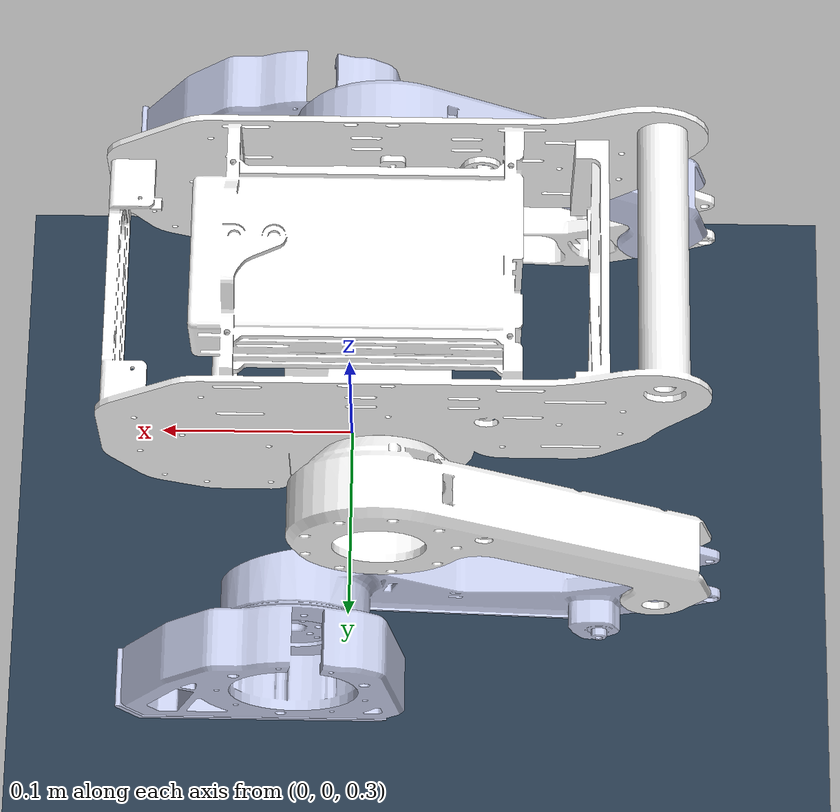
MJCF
<mujoco model="standuptest">
  <compiler angle="radian"/>
  <asset>
    <texture type="skybox" builtin="gradient" rgb1="0.3 0.5 0.7" rgb2="0 0 0" width="512" height="512" />
    <texture name="texplane" type="2d" builtin="checker" rgb1=".2 .3 .4" rgb2=".1 0.15 0.2" width="512" height="512" mark="cross" markrgb=".8 .8 .8" />
    <material name="matplane" reflectance="0.3" texture="texplane" texrepeat="1 1" texuniform="true" />
    <mesh name="base_link" file="base_link.STL"/>
    <mesh name="la_link" file="la_link.STL"/>
    <mesh name="ll_link" file="ll_link.STL"/>
    <mesh name="lf_link" file="lf_link.STL"/>
    <mesh name="ra_link" file="ra_link.STL"/>
    <mesh name="rl_link" file="rl_link.STL"/>
    <mesh name="rf_link" file="rf_link.STL"/>
    <texture builtin="gradient" height="15" rgb1="1 1 1" rgb2="0 0 0" type="skybox" width="100"/>
    <texture builtin="flat" height="80" mark="cross" markrgb="1 1 1" name="texgeom" random="0.1" rgb1="0.8 0.6 0.4" rgb2="0.8 0.6 0.4" type="cube" width="127"/>
    <texture builtin="checker" height="80" name="texplane2" rgb1="0.2 0.4 0.6" rgb2="0.8 0.8 0.8" type="2d" width="100"/>
    <material name="MatPlane" reflectance="1.5" shininess="1" specular="1" texrepeat="60 60" texture="texplane"/>
    <material name="geoms" texture="texgeom" texuniform="true"/>
    <hfield name="mytilted" file="heightmap.png" nrow="0" ncol="0" size="150 150 0.3 1.5" />

  </asset>
  <worldbody>
    <light directional="true" diffuse=".4 .4 .4" specular="0.1 0.1 0.1" pos="0 0 5.0" dir="0 0 -1" castshadow="false" />
    <light directional="true" diffuse=".6 .6 .6" specular="0.2 0.2 0.2" pos="0 0 4" dir="0 0 -1" />
    <geom name="floor" pos="0 0 0" size="50 50 1" type="plane" material="matplane" margin="0.001" condim="3" friction="1 0.005 0.0001" />

    <body name="root" pos="0 0 0.5" quat="0.707 0 0 0">
     <joint name="root" type="free"/>
    <geom type="mesh" rgba="1 1 1 1" mesh="base_link"/>
    <body name="la_link" pos="-0.017369 0.1043 -0.053532">
      <inertial pos="-0.021846 -0.010918 -0.0068477" quat="0.59042 0.408331 0.394297 0.573759" mass="0.8" diaginertia="0.000589031 0.000501341 0.000107558"/>
      <joint name="la_joint" pos="0 0 0" axis="0 -1 0" limited="true" range="-2.5 2.5" actuatorfrcrange="-12 12"/>
      <geom type="mesh" rgba="1 1 1 1" mesh="la_link"/>
      <body name="ll_link" pos="-0.13732 -0.0075 -0.082121">
        <inertial pos="0.10136 0.013027 -0.0011852" quat="0.514115 0.433089 0.508449 0.538145" mass="0.3" diaginertia="0.000593278 0.000558991 4.97219e-05"/>
        <joint name="ll_joint" pos="0 0 0" axis="0 -1 0" limited="true" range="-1.68 0" actuatorfrcrange="-12 12"/>
        <geom type="mesh" rgba="0.79216 0.81961 0.93333 1" mesh="ll_link"/>
        <body name="lf_link" pos="0.17941 0.044 0.01173">
          <inertial pos="0.0086907 0.0082828 -0.0089061" quat="0.495818 0.504291 0.502808 0.497031" mass="0.28026" diaginertia="0.000459531 0.000336517 0.000147612"/>
          <joint name="lf_joint" pos="0 0 0" axis="0 1 0" limited="true" range="-2.6 0" actuatorfrcrange="-12 12"/>
          <geom type="mesh" rgba="0.79216 0.81961 0.93333 1" mesh="lf_link"/>
        </body>
      </body>
    </body>
    <body name="ra_link" pos="-0.017369 -0.1051 -0.053532">
      <inertial pos="-0.021846 0.010918 -0.0068477" quat="0.573759 0.394296 0.408331 0.59042" mass="0.8" diaginertia="0.000589031 0.000501341 0.000107558"/>
      <joint name="ra_joint" pos="0 0 0" axis="0 1 0" limited="true" range="-2.5 2.5" actuatorfrcrange="-12 12"/>
      <geom type="mesh" rgba="0.79216 0.81961 0.93333 1" mesh="ra_link"/>
      <body name="rl_link" pos="-0.13732 0.0075 -0.082121">
        <inertial pos="0.10136 -0.013027 -0.0011854" quat="0.53815 0.508444 0.433096 0.514107" mass="0.3" diaginertia="0.000593308 0.000559011 4.97308e-05"/>
        <joint name="rl_joint" pos="0 0 0" axis="0 1 0" limited="true" range="-0 1.68" actuatorfrcrange="-12 12"/>
        <geom type="mesh" rgba="1 1 1 1" mesh="rl_link"/>
        <body name="rf_link" pos="0.17941 -0.044 0.01173">
          <inertial pos="0.0086908 -0.0082828 -0.008906" quat="0.497031 0.502808 0.504291 0.495818" mass="0.28026" diaginertia="0.000459531 0.000336507 0.000147612"/>
          <joint name="rf_joint" pos="0 0 0" axis="0 -1 0" limited="true" range="0 2.6" />
          <geom type="mesh" rgba="0.79216 0.81961 0.93333 1" mesh="rf_link"/>
          </body>
        </body>
      </body>
    </body>
  </worldbody>

  <actuator>
    <motor name="laj" joint="la_joint" forcelimited="true" forcerange="-12 12" ctrlrange="-12 12"/>
    <motor name="llj" joint="ll_joint" forcelimited="true" forcerange="-12 12" ctrlrange="-12 12"/>
    <motor name="lmotor" joint="lf_joint" forcelimited="true" forcerange="-12 12" ctrlrange="-12 12"/>

    <motor name="raj" joint="ra_joint" forcelimited="true" forcerange="-12 12" ctrlrange="-12 12"/>
    <motor name="rlj" joint="rl_joint" forcelimited="true" forcerange="-12 12" ctrlrange="-12 12"/>
    <motor name="rmotor" joint="rf_joint" forcelimited="true" forcerange="-12 12" ctrlrange="-12 12"/>
  </actuator>
</mujoco>
